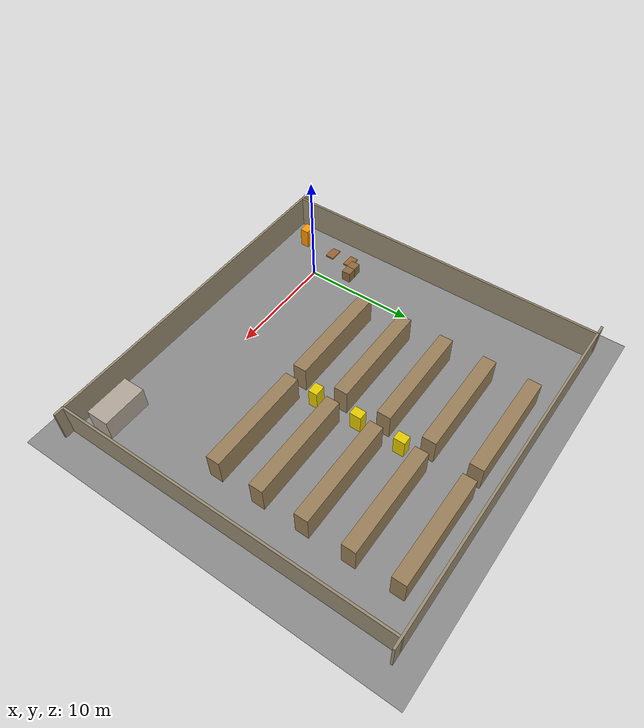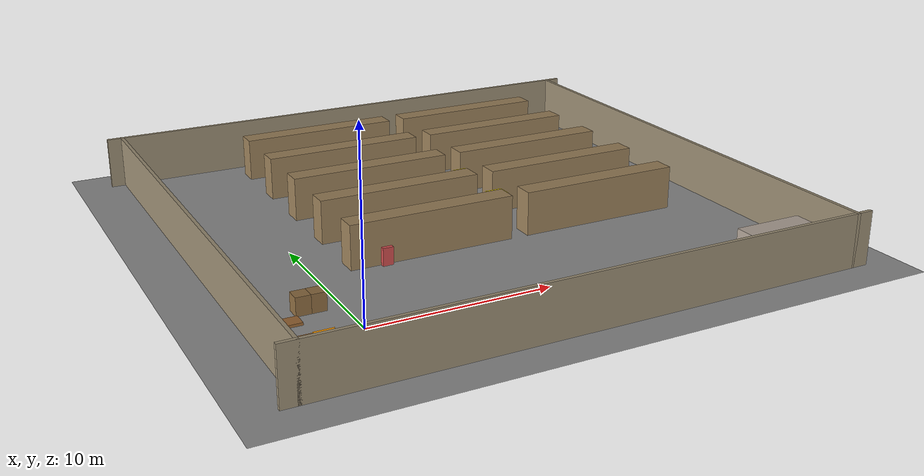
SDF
<?xml version="1.0" ?>
<sdf version="1.8">
  <world name="warehouse">

    <!-- Earth reference frame for GPS/NavSat and Magnetometer sensors -->
    <spherical_coordinates>
      <surface_model>EARTH_WGS84</surface_model>
      <latitude_deg>51.5074</latitude_deg>
      <longitude_deg>-0.1278</longitude_deg>
      <elevation>0</elevation>
      <heading_deg>0</heading_deg>
    </spherical_coordinates>

    <plugin filename="gz-sim-physics-system"           name="gz::sim::systems::Physics"/>
    <plugin filename="gz-sim-user-commands-system"     name="gz::sim::systems::UserCommands"/>
    <plugin filename="gz-sim-scene-broadcaster-system" name="gz::sim::systems::SceneBroadcaster"/>
    <plugin filename="gz-sim-sensors-system"           name="gz::sim::systems::Sensors">
      <render_engine>ogre2</render_engine>
    </plugin>
    <plugin filename="gz-sim-imu-system"               name="gz::sim::systems::Imu"/>
    <plugin filename="gz-sim-navsat-system"           name="gz::sim::systems::NavSat"/>
    <plugin filename="gz-sim-magnetometer-system"     name="gz::sim::systems::Magnetometer"/>

    <light type="directional" name="sun">
      <cast_shadows>true</cast_shadows><pose>0 0 20 0 0 0</pose>
      <diffuse>0.9 0.85 0.7 1</diffuse><specular>0.2 0.2 0.2 1</specular>
      <attenuation><range>1000</range><constant>0.9</constant><linear>0.01</linear><quadratic>0.001</quadratic></attenuation>
      <direction>-0.3 0.2 -0.9</direction>
    </light>

    <model name="ground_plane"><static>true</static>
      <link name="link">
        <collision name="col"><geometry><plane><normal>0 0 1</normal><size>100 100</size></plane></geometry></collision>
        <visual name="vis">
          <geometry><plane><normal>0 0 1</normal><size>100 100</size></plane></geometry>
          <material><ambient>0.5 0.5 0.5 1</ambient><diffuse>0.55 0.55 0.55 1</diffuse></material>
        </visual>
      </link>
    </model>

    <!-- ── OUTER BOUNDARY ──────────────────────────────────────────────── -->
    <model name="wall_south"><static>true</static><pose>10 -5.1 1.5 0 0 0</pose>
      <link name="l"><collision name="c"><geometry><box><size>32 0.2 3</size></box></geometry><surface><friction><ode><mu>0.05</mu><mu2>0.05</mu2></ode></friction></surface></collision>
      <visual name="v"><geometry><box><size>32 0.2 3</size></box></geometry><material><ambient>0.6 0.55 0.45 1</ambient><diffuse>0.6 0.55 0.45 1</diffuse></material></visual></link></model>
    <model name="wall_north"><static>true</static><pose>10 25.1 1.5 0 0 0</pose>
      <link name="l"><collision name="c"><geometry><box><size>32 0.2 3</size></box></geometry><surface><friction><ode><mu>0.05</mu><mu2>0.05</mu2></ode></friction></surface></collision>
      <visual name="v"><geometry><box><size>32 0.2 3</size></box></geometry><material><ambient>0.6 0.55 0.45 1</ambient><diffuse>0.6 0.55 0.45 1</diffuse></material></visual></link></model>
    <model name="wall_west"><static>true</static><pose>-5.1 10 1.5 0 0 0</pose>
      <link name="l"><collision name="c"><geometry><box><size>0.2 30.4 3</size></box></geometry><surface><friction><ode><mu>0.05</mu><mu2>0.05</mu2></ode></friction></surface></collision>
      <visual name="v"><geometry><box><size>0.2 30.4 3</size></box></geometry><material><ambient>0.6 0.55 0.45 1</ambient><diffuse>0.6 0.55 0.45 1</diffuse></material></visual></link></model>
    <model name="wall_east"><static>true</static><pose>25.1 10 1.5 0 0 0</pose>
      <link name="l"><collision name="c"><geometry><box><size>0.2 30.4 3</size></box></geometry><surface><friction><ode><mu>0.05</mu><mu2>0.05</mu2></ode></friction></surface></collision>
      <visual name="v"><geometry><box><size>0.2 30.4 3</size></box></geometry><material><ambient>0.6 0.55 0.45 1</ambient><diffuse>0.6 0.55 0.45 1</diffuse></material></visual></link></model>

    <!-- ── LOADING DOCK (staging area obstacles) ───────────────────────── -->
    <model name="pallet_1"><static>true</static><pose>-3 2 0.1 0 0 0</pose>
      <link name="l"><collision name="c"><geometry><box><size>1.2 0.8 0.15</size></box></geometry><surface><friction><ode><mu>0.05</mu><mu2>0.05</mu2></ode></friction></surface></collision>
      <visual name="v"><geometry><box><size>1.2 0.8 0.15</size></box></geometry><material><ambient>0.6 0.4 0.2 1</ambient><diffuse>0.6 0.4 0.2 1</diffuse></material></visual></link></model>
    <model name="pallet_2"><static>true</static><pose>-3 0 0.1 0 0 0</pose>
      <link name="l"><collision name="c"><geometry><box><size>1.2 0.8 0.15</size></box></geometry><surface><friction><ode><mu>0.05</mu><mu2>0.05</mu2></ode></friction></surface></collision>
      <visual name="v"><geometry><box><size>1.2 0.8 0.15</size></box></geometry><material><ambient>0.6 0.4 0.2 1</ambient><diffuse>0.6 0.4 0.2 1</diffuse></material></visual></link></model>
    <model name="crate_1"><static>true</static><pose>-2 3 0.5 0 0 0</pose>
      <link name="l"><collision name="c"><geometry><box><size>0.8 0.8 1.0</size></box></geometry><surface><friction><ode><mu>0.05</mu><mu2>0.05</mu2></ode></friction></surface></collision>
      <visual name="v"><geometry><box><size>0.8 0.8 1.0</size></box></geometry><material><ambient>0.55 0.42 0.25 1</ambient><diffuse>0.55 0.42 0.25 1</diffuse></material></visual></link></model>
    <model name="crate_2"><static>true</static><pose>-1.2 3 0.5 0 0 0</pose>
      <link name="l"><collision name="c"><geometry><box><size>0.8 0.8 1.0</size></box></geometry><surface><friction><ode><mu>0.05</mu><mu2>0.05</mu2></ode></friction></surface></collision>
      <visual name="v"><geometry><box><size>0.8 0.8 1.0</size></box></geometry><material><ambient>0.55 0.42 0.25 1</ambient><diffuse>0.55 0.42 0.25 1</diffuse></material></visual></link></model>
    <model name="office_box"><static>true</static><pose>22 -3 1 0 0 0</pose>
      <link name="l"><collision name="c"><geometry><box><size>4 2 2</size></box></geometry><surface><friction><ode><mu>0.05</mu><mu2>0.05</mu2></ode></friction></surface></collision>
      <visual name="v"><geometry><box><size>4 2 2</size></box></geometry><material><ambient>0.7 0.65 0.6 1</ambient><diffuse>0.7 0.65 0.6 1</diffuse></material></visual></link></model>

    <!-- Row A: y=7 -->
    <model name="rowA_L"><static>true</static><pose>6.75 7 1.25 0 0 0</pose>
      <link name="l"><collision name="c"><geometry><box><size>9.5 1.2 2.5</size></box></geometry><surface><friction><ode><mu>0.05</mu><mu2>0.05</mu2></ode></friction></surface></collision>
      <visual name="v"><geometry><box><size>9.5 1.2 2.5</size></box></geometry><material><ambient>0.6 0.5 0.35 1</ambient><diffuse>0.6 0.5 0.35 1</diffuse></material></visual></link></model>
    <model name="rowA_R"><static>true</static><pose>17.25 7 1.25 0 0 0</pose>
      <link name="l"><collision name="c"><geometry><box><size>9.5 1.2 2.5</size></box></geometry><surface><friction><ode><mu>0.05</mu><mu2>0.05</mu2></ode></friction></surface></collision>
      <visual name="v"><geometry><box><size>9.5 1.2 2.5</size></box></geometry><material><ambient>0.6 0.5 0.35 1</ambient><diffuse>0.6 0.5 0.35 1</diffuse></material></visual></link></model>

    <!-- Row B: y=11 -->
    <model name="rowB_L"><static>true</static><pose>6.75 11 1.25 0 0 0</pose>
      <link name="l"><collision name="c"><geometry><box><size>9.5 1.2 2.5</size></box></geometry><surface><friction><ode><mu>0.05</mu><mu2>0.05</mu2></ode></friction></surface></collision>
      <visual name="v"><geometry><box><size>9.5 1.2 2.5</size></box></geometry><material><ambient>0.6 0.5 0.35 1</ambient><diffuse>0.6 0.5 0.35 1</diffuse></material></visual></link></model>
    <model name="rowB_R"><static>true</static><pose>17.25 11 1.25 0 0 0</pose>
      <link name="l"><collision name="c"><geometry><box><size>9.5 1.2 2.5</size></box></geometry><surface><friction><ode><mu>0.05</mu><mu2>0.05</mu2></ode></friction></surface></collision>
      <visual name="v"><geometry><box><size>9.5 1.2 2.5</size></box></geometry><material><ambient>0.6 0.5 0.35 1</ambient><diffuse>0.6 0.5 0.35 1</diffuse></material></visual></link></model>

    <!-- Row C: y=15 -->
    <model name="rowC_L"><static>true</static><pose>6.75 15 1.25 0 0 0</pose>
      <link name="l"><collision name="c"><geometry><box><size>9.5 1.2 2.5</size></box></geometry><surface><friction><ode><mu>0.05</mu><mu2>0.05</mu2></ode></friction></surface></collision>
      <visual name="v"><geometry><box><size>9.5 1.2 2.5</size></box></geometry><material><ambient>0.6 0.5 0.35 1</ambient><diffuse>0.6 0.5 0.35 1</diffuse></material></visual></link></model>
    <model name="rowC_R"><static>true</static><pose>17.25 15 1.25 0 0 0</pose>
      <link name="l"><collision name="c"><geometry><box><size>9.5 1.2 2.5</size></box></geometry><surface><friction><ode><mu>0.05</mu><mu2>0.05</mu2></ode></friction></surface></collision>
      <visual name="v"><geometry><box><size>9.5 1.2 2.5</size></box></geometry><material><ambient>0.6 0.5 0.35 1</ambient><diffuse>0.6 0.5 0.35 1</diffuse></material></visual></link></model>

    <!-- Row D: y=19 -->
    <model name="rowD_L"><static>true</static><pose>6.75 19 1.25 0 0 0</pose>
      <link name="l"><collision name="c"><geometry><box><size>9.5 1.2 2.5</size></box></geometry><surface><friction><ode><mu>0.05</mu><mu2>0.05</mu2></ode></friction></surface></collision>
      <visual name="v"><geometry><box><size>9.5 1.2 2.5</size></box></geometry><material><ambient>0.6 0.5 0.35 1</ambient><diffuse>0.6 0.5 0.35 1</diffuse></material></visual></link></model>
    <model name="rowD_R"><static>true</static><pose>17.25 19 1.25 0 0 0</pose>
      <link name="l"><collision name="c"><geometry><box><size>9.5 1.2 2.5</size></box></geometry><surface><friction><ode><mu>0.05</mu><mu2>0.05</mu2></ode></friction></surface></collision>
      <visual name="v"><geometry><box><size>9.5 1.2 2.5</size></box></geometry><material><ambient>0.6 0.5 0.35 1</ambient><diffuse>0.6 0.5 0.35 1</diffuse></material></visual></link></model>

    <!-- Row E: y=23 -->
    <model name="rowE_L"><static>true</static><pose>6.75 23 1.25 0 0 0</pose>
      <link name="l"><collision name="c"><geometry><box><size>9.5 1.2 2.5</size></box></geometry><surface><friction><ode><mu>0.05</mu><mu2>0.05</mu2></ode></friction></surface></collision>
      <visual name="v"><geometry><box><size>9.5 1.2 2.5</size></box></geometry><material><ambient>0.6 0.5 0.35 1</ambient><diffuse>0.6 0.5 0.35 1</diffuse></material></visual></link></model>
    <model name="rowE_R"><static>true</static><pose>17.25 23 1.25 0 0 0</pose>
      <link name="l"><collision name="c"><geometry><box><size>9.5 1.2 2.5</size></box></geometry><surface><friction><ode><mu>0.05</mu><mu2>0.05</mu2></ode></friction></surface></collision>
      <visual name="v"><geometry><box><size>9.5 1.2 2.5</size></box></geometry><material><ambient>0.6 0.5 0.35 1</ambient><diffuse>0.6 0.5 0.35 1</diffuse></material></visual></link></model>

    <!-- Boxes ON shelves for extra lidar clutter -->
    <model name="shelf_box_a1"><static>true</static><pose>4 6.4 0.5 0 0 0</pose>
      <link name="l"><collision name="c"><geometry><box><size>0.6 0.5 1.0</size></box></geometry><surface><friction><ode><mu>0.05</mu><mu2>0.05</mu2></ode></friction></surface></collision>
      <visual name="v"><geometry><box><size>0.6 0.5 1.0</size></box></geometry><material><ambient>0.8 0.3 0.3 1</ambient><diffuse>0.8 0.3 0.3 1</diffuse></material></visual></link></model>
    <model name="shelf_box_b1"><static>true</static><pose>15 10.4 0.5 0 0 0</pose>
      <link name="l"><collision name="c"><geometry><box><size>0.6 0.5 1.0</size></box></geometry><surface><friction><ode><mu>0.05</mu><mu2>0.05</mu2></ode></friction></surface></collision>
      <visual name="v"><geometry><box><size>0.6 0.5 1.0</size></box></geometry><material><ambient>0.3 0.6 0.8 1</ambient><diffuse>0.3 0.6 0.8 1</diffuse></material></visual></link></model>
    <model name="shelf_box_c1"><static>true</static><pose>8 14.4 0.5 0 0 0</pose>
      <link name="l"><collision name="c"><geometry><box><size>0.6 0.5 1.0</size></box></geometry><surface><friction><ode><mu>0.05</mu><mu2>0.05</mu2></ode></friction></surface></collision>
      <visual name="v"><geometry><box><size>0.6 0.5 1.0</size></box></geometry><material><ambient>0.3 0.8 0.4 1</ambient><diffuse>0.3 0.8 0.4 1</diffuse></material></visual></link></model>

    <!-- Forklift 1: cross-aisle patrol (x-direction) at y=9.2 -->
    <model name="forklift_1">
      <pose>12 9 0.9 0 0 0</pose>
      <link name="body">
        <inertial><mass>500</mass><inertia><ixx>50</ixx><ixy>0</ixy><ixz>0</ixz><iyy>50</iyy><iyz>0</iyz><izz>30</izz></inertia></inertial>
        <collision name="col"><geometry><box><size>1.0 0.8 1.8</size></box></geometry><surface><friction><ode><mu>0.05</mu><mu2>0.05</mu2></ode></friction></surface></collision>
        <visual name="vis"><geometry><box><size>1.0 0.8 1.8</size></box></geometry>
          <material><ambient>0.9 0.8 0.0 1</ambient><diffuse>0.9 0.8 0.0 1</diffuse></material></visual>
      </link>
      <plugin filename="gz-sim-trajectory-follower-system" name="gz::sim::systems::TrajectoryFollower">
        <link_name>body</link_name><loop>true</loop><force>800</force><torque>200</torque>
        <waypoints><waypoint>2 9</waypoint><waypoint>22 9</waypoint></waypoints>
      </plugin>
    </model>

    <!-- Forklift 2: aisle patrol (y-direction) between rows A-E at x=4.5 -->
    <model name="forklift_2">
      <pose>12 17 0.9 0 0 0</pose>
      <link name="body">
        <inertial><mass>500</mass><inertia><ixx>50</ixx><ixy>0</ixy><ixz>0</ixz><iyy>50</iyy><iyz>0</iyz><izz>30</izz></inertia></inertial>
        <collision name="col"><geometry><box><size>0.8 1.0 1.8</size></box></geometry><surface><friction><ode><mu>0.05</mu><mu2>0.05</mu2></ode></friction></surface></collision>
        <visual name="vis"><geometry><box><size>0.8 1.0 1.8</size></box></geometry>
          <material><ambient>0.9 0.8 0.0 1</ambient><diffuse>0.9 0.8 0.0 1</diffuse></material></visual>
      </link>
      <plugin filename="gz-sim-trajectory-follower-system" name="gz::sim::systems::TrajectoryFollower">
        <link_name>body</link_name><loop>true</loop><force>800</force><torque>200</torque>
        <waypoints><waypoint>2 17</waypoint><waypoint>22 17</waypoint></waypoints>
      </plugin>
    </model>

    <!-- Forklift 3: diagonal patrol across staging area -->
    <model name="forklift_3">
      <pose>-3 -3 0.9 0 0 0</pose>
      <link name="body">
        <inertial><mass>500</mass><inertia><ixx>50</ixx><ixy>0</ixy><ixz>0</ixz><iyy>50</iyy><iyz>0</iyz><izz>30</izz></inertia></inertial>
        <collision name="col"><geometry><box><size>1.0 0.8 1.8</size></box></geometry><surface><friction><ode><mu>0.05</mu><mu2>0.05</mu2></ode></friction></surface></collision>
        <visual name="vis"><geometry><box><size>1.0 0.8 1.8</size></box></geometry>
          <material><ambient>1.0 0.6 0.0 1</ambient><diffuse>1.0 0.6 0.0 1</diffuse></material></visual>
      </link>
      <plugin filename="gz-sim-trajectory-follower-system" name="gz::sim::systems::TrajectoryFollower">
        <link_name>body</link_name><loop>true</loop><force>800</force><torque>200</torque>
        <waypoints><waypoint>0 -3</waypoint><waypoint>20 -3</waypoint></waypoints>
      </plugin>
    </model>

    <!-- Forklift 4: right side aisle patrol at x=19.5 -->
    <model name="forklift_4">
      <pose>12 13 0.9 0 0 0</pose>
      <link name="body">
        <inertial><mass>500</mass><inertia><ixx>50</ixx><ixy>0</ixy><ixz>0</ixz><iyy>50</iyy><iyz>0</iyz><izz>30</izz></inertia></inertial>
        <collision name="col"><geometry><box><size>0.8 1.0 1.8</size></box></geometry><surface><friction><ode><mu>0.05</mu><mu2>0.05</mu2></ode></friction></surface></collision>
        <visual name="vis"><geometry><box><size>0.8 1.0 1.8</size></box></geometry>
          <material><ambient>0.9 0.8 0.0 1</ambient><diffuse>0.9 0.8 0.0 1</diffuse></material></visual>
      </link>
      <plugin filename="gz-sim-trajectory-follower-system" name="gz::sim::systems::TrajectoryFollower">
        <link_name>body</link_name><loop>true</loop><force>800</force><torque>200</torque>
        <waypoints><waypoint>2 13</waypoint><waypoint>22 13</waypoint></waypoints>
      </plugin>
    </model>

  </world>
</sdf>
